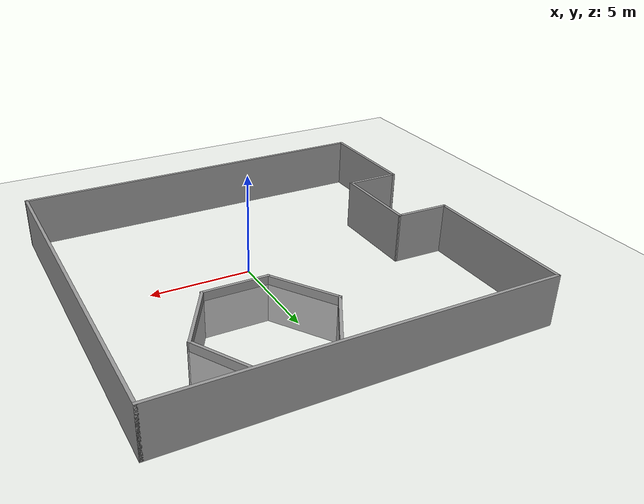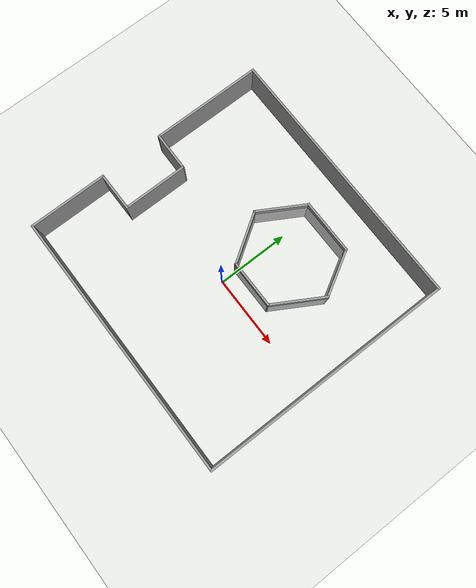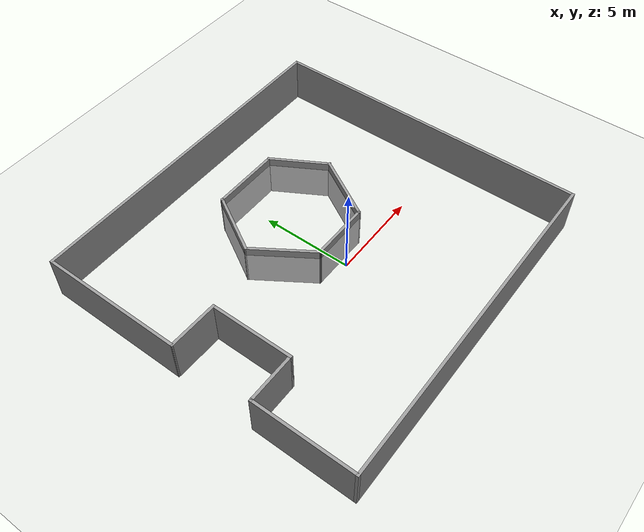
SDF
<sdf version="1.6">
 <world name="default">
  <light name="sun" type="directional">
   <pose>0 0 10 0 -0 0</pose>
   <diffuse>0.8 0.8 0.8 1</diffuse>
   <specular>0.2 0.2 0.2 1</specular>
   <attenuation>
    <range>1000</range>
    <constant>0.9</constant>
    <linear>0.01</linear>
    <quadratic>0.001</quadratic>
   </attenuation>
   <direction>-0.5 0.1 -0.9</direction>
  </light>
  <model name="ground_plane">
   <static>1</static>
   <link name="link">
    <collision name="collision">
     <geometry><plane><normal>0 0 1</normal><size>100 100</size></plane></geometry>
     <surface>
      <contact><collide_bitmask>65535</collide_bitmask></contact>
      <friction><ode><mu>100</mu><mu2>50</mu2></ode></friction>
     </surface>
    </collision>
    <visual name="visual">
     <cast_shadows>0</cast_shadows>
     <geometry><plane><normal>0 0 1</normal><size>100 100</size></plane></geometry>
     <material>
      <script><uri>file://media/materials/scripts/gazebo.material</uri><name>Gazebo/Grey</name></script>
     </material>
    </visual>
   </link>
  </model>
  <gravity>0 0 -9.8</gravity>
  <magnetic_field>6e-06 2.3e-05 -4.2e-05</magnetic_field>
  <atmosphere type="adiabatic"/>
  <physics name="default_physics" default="0" type="ode">
   <max_step_size>0.001</max_step_size>
   <real_time_factor>1</real_time_factor>
   <real_time_update_rate>1000</real_time_update_rate>
  </physics>
  <scene><ambient>0.4 0.4 0.4 1</ambient><background>0.7 0.7 0.7 1</background><shadows>1</shadows></scene>
  <spherical_coordinates>
   <surface_model>EARTH_WGS84</surface_model>
   <latitude_deg>0</latitude_deg>
   <longitude_deg>0</longitude_deg>
   <elevation>0</elevation>
   <heading_deg>0</heading_deg>
  </spherical_coordinates>
  <model name="sefude">
   <pose>-0.426319 1.24362 0 0 -0 0</pose>
   <link name="Wall_10">
    <collision name="Wall_10_Collision">
     <geometry><box><size>2.75048 0.15 2.5</size></box></geometry>
     <pose>0 0 1.25 0 -0 0</pose>
    </collision>
    <visual name="Wall_10_Visual">
     <pose>0 0 1.25 0 -0 0</pose>
     <geometry><box><size>2.75048 0.15 2.5</size></box></geometry>
     <material>
      <script><uri>file://media/materials/scripts/gazebo.material</uri><name>Gazebo/Grey</name></script>
      <ambient>1 1 1 1</ambient>
     </material>
     <meta><layer>0</layer></meta>
    </visual>
    <pose>-7.87429 1.05 0 0 -0 3.12236</pose>
   </link>
   <link name="Wall_3">
    <collision name="Wall_3_Collision">
     <geometry><box><size>7.75 0.15 2.5</size></box></geometry>
     <pose>0 0 1.25 0 -0 0</pose>
    </collision>
    <visual name="Wall_3_Visual">
     <pose>0 0 1.25 0 -0 0</pose>
     <geometry><box><size>7.75 0.15 2.5</size></box></geometry>
     <material>
      <script><uri>file://media/materials/scripts/gazebo.material</uri><name>Gazebo/Grey</name></script>
      <ambient>1 1 1 1</ambient>
     </material>
     <meta><layer>0</layer></meta>
    </visual>
    <pose>-9.17429 4.875 0 0 -0 1.5708</pose>
   </link>
   <link name="Wall_4">
    <collision name="Wall_4_Collision">
     <geometry><box><size>18.5 0.15 2.5</size></box></geometry>
     <pose>0 0 1.25 0 -0 0</pose>
    </collision>
    <visual name="Wall_4_Visual">
     <pose>0 0 1.25 0 -0 0</pose>
     <geometry><box><size>18.5 0.15 2.5</size></box></geometry>
     <material>
      <script><uri>file://media/materials/scripts/gazebo.material</uri><name>Gazebo/Grey</name></script>
      <ambient>1 1 1 1</ambient>
     </material>
     <meta><layer>0</layer></meta>
    </visual>
    <pose>0.000714 8.675 0 0 -0 0</pose>
   </link>
   <link name="Wall_5">
    <collision name="Wall_5_Collision">
     <geometry><box><size>17.5 0.15 2.5</size></box></geometry>
     <pose>0 0 1.25 0 -0 0</pose>
    </collision>
    <visual name="Wall_5_Visual">
     <pose>0 0 1.25 0 -0 0</pose>
     <geometry><box><size>17.5 0.15 2.5</size></box></geometry>
     <material>
      <script><uri>file://media/materials/scripts/gazebo.material</uri><name>Gazebo/Grey</name></script>
      <ambient>1 1 1 1</ambient>
     </material>
     <meta><layer>0</layer></meta>
    </visual>
    <pose>9.17571 -0 0 0 -0 -1.5708</pose>
   </link>
   <link name="Wall_6">
    <collision name="Wall_6_Collision">
     <geometry><box><size>18.5 0.15 2.5</size></box></geometry>
     <pose>0 0 1.25 0 -0 0</pose>
    </collision>
    <visual name="Wall_6_Visual">
     <pose>0 0 1.25 0 -0 0</pose>
     <geometry><box><size>18.5 0.15 2.5</size></box></geometry>
     <material>
      <script><uri>file://media/materials/scripts/gazebo.material</uri><name>Gazebo/Grey</name></script>
      <ambient>1 1 1 1</ambient>
     </material>
     <meta><layer>0</layer></meta>
    </visual>
    <pose>0.000714 -8.675 0 0 -0 3.14159</pose>
   </link>
   <link name="Wall_7">
    <collision name="Wall_7_Collision">
     <geometry><box><size>5.5 0.15 2.5</size></box></geometry>
     <pose>0 0 1.25 0 -0 0</pose>
    </collision>
    <visual name="Wall_7_Visual">
     <pose>0 0 1.25 0 -0 0</pose>
     <geometry><box><size>5.5 0.15 2.5</size></box></geometry>
     <material>
      <script><uri>file://media/materials/scripts/gazebo.material</uri><name>Gazebo/Grey</name></script>
      <ambient>1 1 1 1</ambient>
     </material>
     <meta><layer>0</layer></meta>
    </visual>
    <pose>-9.17429 -6 0 0 -0 1.5708</pose>
   </link>
   <link name="Wall_8">
    <collision name="Wall_8_Collision">
     <geometry><box><size>2.75 0.15 2.5</size></box></geometry>
     <pose>0 0 1.25 0 -0 0</pose>
    </collision>
    <visual name="Wall_8_Visual">
     <pose>0 0 1.25 0 -0 0</pose>
     <geometry><box><size>2.75 0.15 2.5</size></box></geometry>
     <material>
      <script><uri>file://media/materials/scripts/gazebo.material</uri><name>Gazebo/Grey</name></script>
      <ambient>1 1 1 1</ambient>
     </material>
     <meta><layer>0</layer></meta>
    </visual>
    <pose>-7.87429 -3.325 0 0 -0 0</pose>
   </link>
   <link name="Wall_9">
    <collision name="Wall_9_Collision">
     <geometry><box><size>4.5 0.15 2.5</size></box></geometry>
     <pose>0 0 1.25 0 -0 0</pose>
    </collision>
    <visual name="Wall_9_Visual">
     <pose>0 0 1.25 0 -0 0</pose>
     <geometry><box><size>4.5 0.15 2.5</size></box></geometry>
     <material>
      <script><uri>file://media/materials/scripts/gazebo.material</uri><name>Gazebo/Grey</name></script>
      <ambient>1 1 1 1</ambient>
     </material>
     <meta><layer>0</layer></meta>
    </visual>
    <pose>-6.57429 -1.15 0 0 -0 1.5708</pose>
   </link>
   <static>1</static>
  </model>
  <model name="sefude2">
   <pose>1.26124 4.49596 -2.06853 0 -0 0</pose>
   <link name="Wall_18">
    <collision name="Wall_18_Collision">
     <geometry><box><size>3.5 0.15 2.5</size></box></geometry>
     <pose>0 0 1.25 0 -0 0</pose>
    </collision>
    <visual name="Wall_18_Visual">
     <pose>0 0 1.25 0 -0 0</pose>
     <geometry><box><size>3.5 0.15 2.5</size></box></geometry>
     <material>
      <script><uri>file://media/materials/scripts/gazebo.material</uri><name>Gazebo/Grey</name></script>
      <ambient>1 1 1 1</ambient>
     </material>
     <meta><layer>0</layer></meta>
    </visual>
    <pose>0.06321 -3.11698 0 0 -0 0</pose>
   </link>
   <link name="Wall_19">
    <collision name="Wall_19_Collision">
     <geometry><box><size>4 0.15 2.5</size></box></geometry>
     <pose>0 0 1.25 0 -0 0</pose>
    </collision>
    <visual name="Wall_19_Visual">
     <pose>0 0 1.25 0 -0 0</pose>
     <geometry><box><size>4 0.15 2.5</size></box></geometry>
     <material>
      <script><uri>file://media/materials/scripts/gazebo.material</uri><name>Gazebo/Grey</name></script>
      <ambient>1 1 1 1</ambient>
     </material>
     <meta><layer>0</layer></meta>
    </visual>
    <pose>2.70071 -1.44988 0 0 -0 1.0472</pose>
   </link>
   <link name="Wall_20">
    <collision name="Wall_20_Collision">
     <geometry><box><size>3.5 0.15 2.5</size></box></geometry>
     <pose>0 0 1.25 0 -0 0</pose>
    </collision>
    <visual name="Wall_20_Visual">
     <pose>0 0 1.25 0 -0 0</pose>
     <geometry><box><size>3.5 0.15 2.5</size></box></geometry>
     <material>
      <script><uri>file://media/materials/scripts/gazebo.material</uri><name>Gazebo/Grey</name></script>
      <ambient>1 1 1 1</ambient>
     </material>
     <meta><layer>0</layer></meta>
    </visual>
    <pose>2.82571 1.66781 0 0 -0 2.0944</pose>
   </link>
   <link name="Wall_21">
    <collision name="Wall_21_Collision">
     <geometry><box><size>4 0.15 2.5</size></box></geometry>
     <pose>0 0 1.25 0 -0 0</pose>
    </collision>
    <visual name="Wall_21_Visual">
     <pose>0 0 1.25 0 -0 0</pose>
     <geometry><box><size>4 0.15 2.5</size></box></geometry>
     <material>
      <script><uri>file://media/materials/scripts/gazebo.material</uri><name>Gazebo/Grey</name></script>
      <ambient>1 1 1 1</ambient>
     </material>
     <meta><layer>0</layer></meta>
    </visual>
    <pose>0.06321 3.1184 0 0 -0 3.14159</pose>
   </link>
   <link name="Wall_22">
    <collision name="Wall_22_Collision">
     <geometry><box><size>3.75 0.15 2.5</size></box></geometry>
     <pose>0 0 1.25 0 -0 0</pose>
    </collision>
    <visual name="Wall_22_Visual">
     <pose>0 0 1.25 0 -0 0</pose>
     <geometry><box><size>3.75 0.15 2.5</size></box></geometry>
     <material>
      <script><uri>file://media/materials/scripts/gazebo.material</uri><name>Gazebo/Grey</name></script>
      <ambient>1 1 1 1</ambient>
     </material>
     <meta><layer>0</layer></meta>
    </visual>
    <pose>-2.76179 1.55956 0 0 -0 -2.0944</pose>
   </link>
   <link name="Wall_23">
    <collision name="Wall_23_Collision">
     <geometry><box><size>3.88129 0.15 2.5</size></box></geometry>
     <pose>0 0 1.25 0 -0 0</pose>
    </collision>
    <visual name="Wall_23_Visual">
     <pose>0 0 1.25 0 -0 0</pose>
     <geometry><box><size>3.88129 0.15 2.5</size></box></geometry>
     <material>
      <script><uri>file://media/materials/scripts/gazebo.material</uri><name>Gazebo/Grey</name></script>
      <ambient>1 1 1 1</ambient>
     </material>
     <meta><layer>0</layer></meta>
    </visual>
    <pose>-2.63679 -1.55814 0 0 -0 -0.98914</pose>
   </link>
   <static>1</static>
  </model>
 </world>
</sdf>
